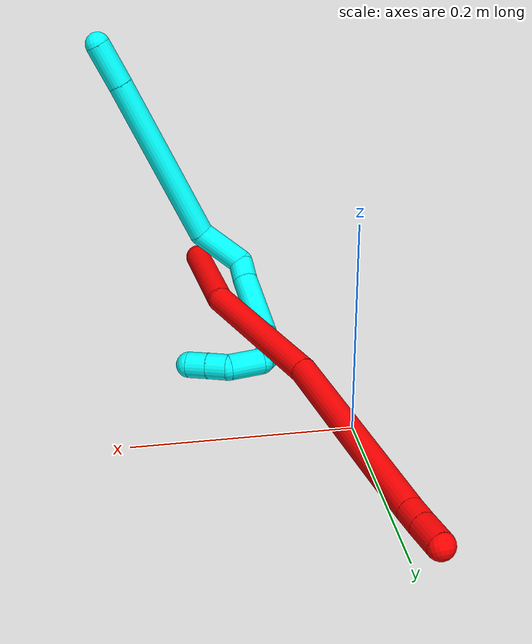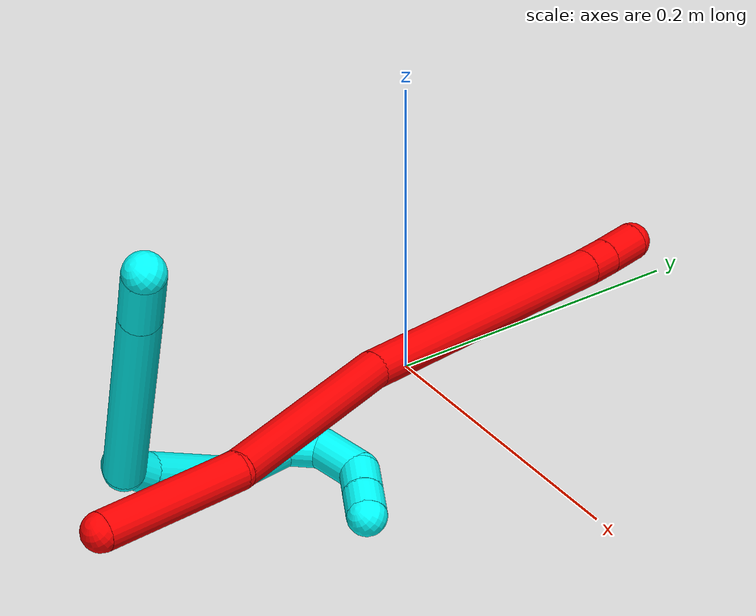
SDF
<sdf version="1.7">
 <world name="default">
  <model name="2">
   <static>0</static>
   <link name="2">
    <collision name="collision-cylinder-e_1_1_4">
     <pose>-0.002732 0.038955 -0.030456 -2.23435 -0.055198 0.113127</pose>
     <geometry><cylinder><radius>0.0125</radius><length>0.099046</length></cylinder></geometry>
     <surface>
      <friction><ode><mu>1.16</mu><mu2>1.16</mu2><slip1>0</slip1><slip2>0</slip2></ode></friction>
      <contact><ode><kp>1e+06</kp><kd>1</kd><max_vel>0</max_vel><min_depth>0.001</min_depth></ode></contact>
     </surface>
    </collision>
    <visual name="visual-cylinder-e_1_1_4">
     <pose>-0.002732 0.038955 -0.030456 -2.23435 -0.055198 0.113127</pose>
     <geometry><cylinder><radius>0.0125</radius><length>0.099046</length></cylinder></geometry>
     <material><ambient>1 0 0 1</ambient></material>
    </visual>
    <collision name="collision-cylinder-e_2_4_5">
     <pose>-0.031253 0.127071 -0.108557 -2.34055 -0.36025 0.812326</pose>
     <geometry><cylinder><radius>0.0125</radius><length>0.146314</length></cylinder></geometry>
     <surface>
      <friction><ode><mu>1.16</mu><mu2>1.16</mu2><slip1>0</slip1><slip2>0</slip2></ode></friction>
      <contact><ode><kp>1e+06</kp><kd>1</kd><max_vel>0</max_vel><min_depth>0.001</min_depth></ode></contact>
     </surface>
    </collision>
    <visual name="visual-cylinder-e_2_4_5">
     <pose>-0.031253 0.127071 -0.108557 -2.34055 -0.36025 0.812326</pose>
     <geometry><cylinder><radius>0.0125</radius><length>0.146314</length></cylinder></geometry>
     <material><ambient>1 0 0 1</ambient></material>
    </visual>
    <collision name="collision-cylinder-e_3_5_6">
     <pose>-0.0764 0.248715 -0.22676 -2.34273 -0.18909 0.441955</pose>
     <geometry><cylinder><radius>0.0125</radius><length>0.20598</length></cylinder></geometry>
     <surface>
      <friction><ode><mu>1.16</mu><mu2>1.16</mu2><slip1>0</slip1><slip2>0</slip2></ode></friction>
      <contact><ode><kp>1e+06</kp><kd>1</kd><max_vel>0</max_vel><min_depth>0.001</min_depth></ode></contact>
     </surface>
    </collision>
    <visual name="visual-cylinder-e_3_5_6">
     <pose>-0.0764 0.248715 -0.22676 -2.34273 -0.18909 0.441955</pose>
     <geometry><cylinder><radius>0.0125</radius><length>0.20598</length></cylinder></geometry>
     <material><ambient>1 0 0 1</ambient></material>
    </visual>
    <collision name="collision-cylinder-e_4_6_7">
     <pose>-0.097776 0.328893 -0.304026 -2.28776 -0.195121 0.423843</pose>
     <geometry><cylinder><radius>0.0125</radius><length>0.02081</length></cylinder></geometry>
     <surface>
      <friction><ode><mu>1.16</mu><mu2>1.16</mu2><slip1>0</slip1><slip2>0</slip2></ode></friction>
      <contact><ode><kp>1e+06</kp><kd>1</kd><max_vel>0</max_vel><min_depth>0.001</min_depth></ode></contact>
     </surface>
    </collision>
    <visual name="visual-cylinder-e_4_6_7">
     <pose>-0.097776 0.328893 -0.304026 -2.28776 -0.195121 0.423843</pose>
     <geometry><cylinder><radius>0.0125</radius><length>0.02081</length></cylinder></geometry>
     <material><ambient>1 0 0 1</ambient></material>
    </visual>
    <collision name="collision-cylinder-e_5_7_2">
     <pose>-0.102681 0.347061 -0.319443 -2.26449 -0.208902 0.439805</pose>
     <geometry><cylinder><radius>0.0125</radius><length>0.02785</length></cylinder></geometry>
     <surface>
      <friction><ode><mu>1.16</mu><mu2>1.16</mu2><slip1>0</slip1><slip2>0</slip2></ode></friction>
      <contact><ode><kp>1e+06</kp><kd>1</kd><max_vel>0</max_vel><min_depth>0.001</min_depth></ode></contact>
     </surface>
    </collision>
    <visual name="visual-cylinder-e_5_7_2">
     <pose>-0.102681 0.347061 -0.319443 -2.26449 -0.208902 0.439805</pose>
     <geometry><cylinder><radius>0.0125</radius><length>0.02785</length></cylinder></geometry>
     <material><ambient>1 0 0 1</ambient></material>
    </visual>
    <collision name="collision-sphere-2">
     <pose>-0.105569 0.357535 -0.328153 0 -0 0</pose>
     <geometry><sphere><radius>0.0125</radius></sphere></geometry>
     <surface>
      <friction><ode><mu>1.16</mu><mu2>1.16</mu2><slip1>0</slip1><slip2>0</slip2></ode></friction>
      <contact><ode><kp>1e+06</kp><kd>1</kd><max_vel>0</max_vel><min_depth>0.001</min_depth></ode></contact>
     </surface>
    </collision>
    <visual name="visual-sphere-2">
     <pose>-0.105569 0.357535 -0.328153 0 -0 0</pose>
     <geometry><sphere><radius>0.0125</radius></sphere></geometry>
     <material><ambient>1 0 0 1</ambient></material>
    </visual>
    <collision name="collision-sphere-7">
     <pose>-0.099793 0.336587 -0.310733 0 -0 0</pose>
     <geometry><sphere><radius>0.0125</radius></sphere></geometry>
     <surface>
      <friction><ode><mu>1.16</mu><mu2>1.16</mu2><slip1>0</slip1><slip2>0</slip2></ode></friction>
      <contact><ode><kp>1e+06</kp><kd>1</kd><max_vel>0</max_vel><min_depth>0.001</min_depth></ode></contact>
     </surface>
    </collision>
    <visual name="visual-sphere-7">
     <pose>-0.099793 0.336587 -0.310733 0 -0 0</pose>
     <geometry><sphere><radius>0.0125</radius></sphere></geometry>
     <material><ambient>1 0 0 1</ambient></material>
    </visual>
    <collision name="collision-sphere-6">
     <pose>-0.095758 0.321198 -0.297318 0 -0 0</pose>
     <geometry><sphere><radius>0.0125</radius></sphere></geometry>
     <surface>
      <friction><ode><mu>1.16</mu><mu2>1.16</mu2><slip1>0</slip1><slip2>0</slip2></ode></friction>
      <contact><ode><kp>1e+06</kp><kd>1</kd><max_vel>0</max_vel><min_depth>0.001</min_depth></ode></contact>
     </surface>
    </collision>
    <visual name="visual-sphere-6">
     <pose>-0.095758 0.321198 -0.297318 0 -0 0</pose>
     <geometry><sphere><radius>0.0125</radius></sphere></geometry>
     <material><ambient>1 0 0 1</ambient></material>
    </visual>
    <collision name="collision-sphere-5">
     <pose>-0.057041 0.176232 -0.156203 0 -0 0</pose>
     <geometry><sphere><radius>0.0125</radius></sphere></geometry>
     <surface>
      <friction><ode><mu>1.16</mu><mu2>1.16</mu2><slip1>0</slip1><slip2>0</slip2></ode></friction>
      <contact><ode><kp>1e+06</kp><kd>1</kd><max_vel>0</max_vel><min_depth>0.001</min_depth></ode></contact>
     </surface>
    </collision>
    <visual name="visual-sphere-5">
     <pose>-0.057041 0.176232 -0.156203 0 -0 0</pose>
     <geometry><sphere><radius>0.0125</radius></sphere></geometry>
     <material><ambient>1 0 0 1</ambient></material>
    </visual>
    <collision name="collision-sphere-1">
     <geometry><sphere><radius>0.0125</radius></sphere></geometry>
     <surface>
      <friction><ode><mu>1.16</mu><mu2>1.16</mu2><slip1>0</slip1><slip2>0</slip2></ode></friction>
      <contact><ode><kp>1e+06</kp><kd>1</kd><max_vel>0</max_vel><min_depth>0.001</min_depth></ode></contact>
     </surface>
    </collision>
    <visual name="visual-sphere-1">
     <geometry><sphere><radius>0.0125</radius></sphere></geometry>
     <material><ambient>1 0 0 1</ambient></material>
    </visual>
    <collision name="collision-sphere-4">
     <pose>-0.005464 0.077911 -0.060911 0 -0 0</pose>
     <geometry><sphere><radius>0.0125</radius></sphere></geometry>
     <surface>
      <friction><ode><mu>1.16</mu><mu2>1.16</mu2><slip1>0</slip1><slip2>0</slip2></ode></friction>
      <contact><ode><kp>1e+06</kp><kd>1</kd><max_vel>0</max_vel><min_depth>0.001</min_depth></ode></contact>
     </surface>
    </collision>
    <visual name="visual-sphere-4">
     <pose>-0.005464 0.077911 -0.060911 0 -0 0</pose>
     <geometry><sphere><radius>0.0125</radius></sphere></geometry>
     <material><ambient>1 0 0 1</ambient></material>
    </visual>
    <inertial>
     <pose>-0.050949 0.180382 -0.161663 0 -0 0</pose>
     <mass>0.5</mass>
     <inertia>
      <ixx>0.001407</ixx>
      <ixy>0</ixy>
      <ixz>0</ixz>
      <iyy>-2.4e-05</iyy>
      <iyz>0</iyz>
      <izz>-0.000555</izz>
     </inertia>
    </inertial>
   </link>
   <pose>0.102298 -0.282203 0.048633 0.641828 0.10795 0.034063</pose>
  </model>
  <model name="3">
   <static>0</static>
   <link name="3">
    <collision name="collision-cylinder-e_1_1_4">
     <pose>-0.00895 -0.011032 -0.017558 2.5806 -0.407468 -1.24427</pose>
     <geometry><cylinder><radius>0.0125</radius><length>0.045171</length></cylinder></geometry>
     <surface>
      <friction><ode><mu>1.16</mu><mu2>1.16</mu2><slip1>0</slip1><slip2>0</slip2></ode></friction>
      <contact><ode><kp>1e+06</kp><kd>1</kd><max_vel>0</max_vel><min_depth>0.001</min_depth></ode></contact>
     </surface>
    </collision>
    <visual name="visual-cylinder-e_1_1_4">
     <pose>-0.00895 -0.011032 -0.017558 2.5806 -0.407468 -1.24427</pose>
     <geometry><cylinder><radius>0.0125</radius><length>0.045171</length></cylinder></geometry>
     <material><ambient>0.003922 1 0.996078 1</ambient></material>
    </visual>
    <collision name="collision-cylinder-e_2_4_5">
     <pose>-0.051287 -0.066509 -0.102643 2.5595 -0.39165 -1.16982</pose>
     <geometry><cylinder><radius>0.0125</radius><length>0.174927</length></cylinder></geometry>
     <surface>
      <friction><ode><mu>1.16</mu><mu2>1.16</mu2><slip1>0</slip1><slip2>0</slip2></ode></friction>
      <contact><ode><kp>1e+06</kp><kd>1</kd><max_vel>0</max_vel><min_depth>0.001</min_depth></ode></contact>
     </surface>
    </collision>
    <visual name="visual-cylinder-e_2_4_5">
     <pose>-0.051287 -0.066509 -0.102643 2.5595 -0.39165 -1.16982</pose>
     <geometry><cylinder><radius>0.0125</radius><length>0.174927</length></cylinder></geometry>
     <material><ambient>0.003922 1 0.996078 1</ambient></material>
    </visual>
    <collision name="collision-cylinder-e_3_5_6">
     <pose>-0.102637 -0.113335 -0.187203 3.00263 -0.807204 -2.81849</pose>
     <geometry><cylinder><radius>0.0125</radius><length>0.04974</length></cylinder></geometry>
     <surface>
      <friction><ode><mu>1.16</mu><mu2>1.16</mu2><slip1>0</slip1><slip2>0</slip2></ode></friction>
      <contact><ode><kp>1e+06</kp><kd>1</kd><max_vel>0</max_vel><min_depth>0.001</min_depth></ode></contact>
     </surface>
    </collision>
    <visual name="visual-cylinder-e_3_5_6">
     <pose>-0.102637 -0.113335 -0.187203 3.00263 -0.807204 -2.81849</pose>
     <geometry><cylinder><radius>0.0125</radius><length>0.04974</length></cylinder></geometry>
     <material><ambient>0.003922 1 0.996078 1</ambient></material>
    </visual>
    <collision name="collision-cylinder-e_4_6_7">
     <pose>-0.121307 -0.114311 -0.214828 -3.00958 -0.065824 0.9242</pose>
     <geometry><cylinder><radius>0.0125</radius><length>0.021419</length></cylinder></geometry>
     <surface>
      <friction><ode><mu>1.16</mu><mu2>1.16</mu2><slip1>0</slip1><slip2>0</slip2></ode></friction>
      <contact><ode><kp>1e+06</kp><kd>1</kd><max_vel>0</max_vel><min_depth>0.001</min_depth></ode></contact>
     </surface>
    </collision>
    <visual name="visual-cylinder-e_4_6_7">
     <pose>-0.121307 -0.114311 -0.214828 -3.00958 -0.065824 0.9242</pose>
     <geometry><cylinder><radius>0.0125</radius><length>0.021419</length></cylinder></geometry>
     <material><ambient>0.003922 1 0.996078 1</ambient></material>
    </visual>
    <collision name="collision-cylinder-e_5_7_8">
     <pose>-0.126184 -0.102904 -0.258112 -2.84473 -0.121463 0.772434</pose>
     <geometry><cylinder><radius>0.0125</radius><length>0.068877</length></cylinder></geometry>
     <surface>
      <friction><ode><mu>1.16</mu><mu2>1.16</mu2><slip1>0</slip1><slip2>0</slip2></ode></friction>
      <contact><ode><kp>1e+06</kp><kd>1</kd><max_vel>0</max_vel><min_depth>0.001</min_depth></ode></contact>
     </surface>
    </collision>
    <visual name="visual-cylinder-e_5_7_8">
     <pose>-0.126184 -0.102904 -0.258112 -2.84473 -0.121463 0.772434</pose>
     <geometry><cylinder><radius>0.0125</radius><length>0.068877</length></cylinder></geometry>
     <material><ambient>0.003922 1 0.996078 1</ambient></material>
    </visual>
    <collision name="collision-cylinder-e_6_8_9">
     <pose>-0.129892 -0.074787 -0.303826 -2.19413 0.020815 -0.040596</pose>
     <geometry><cylinder><radius>0.0125</radius><length>0.044636</length></cylinder></geometry>
     <surface>
      <friction><ode><mu>1.16</mu><mu2>1.16</mu2><slip1>0</slip1><slip2>0</slip2></ode></friction>
      <contact><ode><kp>1e+06</kp><kd>1</kd><max_vel>0</max_vel><min_depth>0.001</min_depth></ode></contact>
     </surface>
    </collision>
    <visual name="visual-cylinder-e_6_8_9">
     <pose>-0.129892 -0.074787 -0.303826 -2.19413 0.020815 -0.040596</pose>
     <geometry><cylinder><radius>0.0125</radius><length>0.044636</length></cylinder></geometry>
     <material><ambient>0.003922 1 0.996078 1</ambient></material>
    </visual>
    <collision name="collision-cylinder-e_7_9_10">
     <pose>-0.122841 -0.050607 -0.322987 -2.36214 0.652185 -1.37759</pose>
     <geometry><cylinder><radius>0.0125</radius><length>0.021706</length></cylinder></geometry>
     <surface>
      <friction><ode><mu>1.16</mu><mu2>1.16</mu2><slip1>0</slip1><slip2>0</slip2></ode></friction>
      <contact><ode><kp>1e+06</kp><kd>1</kd><max_vel>0</max_vel><min_depth>0.001</min_depth></ode></contact>
     </surface>
    </collision>
    <visual name="visual-cylinder-e_7_9_10">
     <pose>-0.122841 -0.050607 -0.322987 -2.36214 0.652185 -1.37759</pose>
     <geometry><cylinder><radius>0.0125</radius><length>0.021706</length></cylinder></geometry>
     <material><ambient>0.003922 1 0.996078 1</ambient></material>
    </visual>
    <collision name="collision-cylinder-e_8_10_11">
     <pose>-0.100062 -0.042162 -0.330636 -2.13687 1.39819 -1.98402</pose>
     <geometry><cylinder><radius>0.0125</radius><length>0.032871</length></cylinder></geometry>
     <surface>
      <friction><ode><mu>1.16</mu><mu2>1.16</mu2><slip1>0</slip1><slip2>0</slip2></ode></friction>
      <contact><ode><kp>1e+06</kp><kd>1</kd><max_vel>0</max_vel><min_depth>0.001</min_depth></ode></contact>
     </surface>
    </collision>
    <visual name="visual-cylinder-e_8_10_11">
     <pose>-0.100062 -0.042162 -0.330636 -2.13687 1.39819 -1.98402</pose>
     <geometry><cylinder><radius>0.0125</radius><length>0.032871</length></cylinder></geometry>
     <material><ambient>0.003922 1 0.996078 1</ambient></material>
    </visual>
    <collision name="collision-cylinder-e_9_11_12">
     <pose>-0.07479 -0.043565 -0.329187 0.906731 1.08396 0.570711</pose>
     <geometry><cylinder><radius>0.0125</radius><length>0.02055</length></cylinder></geometry>
     <surface>
      <friction><ode><mu>1.16</mu><mu2>1.16</mu2><slip1>0</slip1><slip2>0</slip2></ode></friction>
      <contact><ode><kp>1e+06</kp><kd>1</kd><max_vel>0</max_vel><min_depth>0.001</min_depth></ode></contact>
     </surface>
    </collision>
    <visual name="visual-cylinder-e_9_11_12">
     <pose>-0.07479 -0.043565 -0.329187 0.906731 1.08396 0.570711</pose>
     <geometry><cylinder><radius>0.0125</radius><length>0.02055</length></cylinder></geometry>
     <material><ambient>0.003922 1 0.996078 1</ambient></material>
    </visual>
    <collision name="collision-cylinder-e_10_12_2">
     <pose>-0.056827 -0.051151 -0.323448 0.93993 1.08353 0.593328</pose>
     <geometry><cylinder><radius>0.0125</radius><length>0.020104</length></cylinder></geometry>
     <surface>
      <friction><ode><mu>1.16</mu><mu2>1.16</mu2><slip1>0</slip1><slip2>0</slip2></ode></friction>
      <contact><ode><kp>1e+06</kp><kd>1</kd><max_vel>0</max_vel><min_depth>0.001</min_depth></ode></contact>
     </surface>
    </collision>
    <visual name="visual-cylinder-e_10_12_2">
     <pose>-0.056827 -0.051151 -0.323448 0.93993 1.08353 0.593328</pose>
     <geometry><cylinder><radius>0.0125</radius><length>0.020104</length></cylinder></geometry>
     <material><ambient>0.003922 1 0.996078 1</ambient></material>
    </visual>
    <collision name="collision-sphere-2">
     <pose>-0.047945 -0.054952 -0.320672 0 -0 0</pose>
     <geometry><sphere><radius>0.0125</radius></sphere></geometry>
     <surface>
      <friction><ode><mu>1.16</mu><mu2>1.16</mu2><slip1>0</slip1><slip2>0</slip2></ode></friction>
      <contact><ode><kp>1e+06</kp><kd>1</kd><max_vel>0</max_vel><min_depth>0.001</min_depth></ode></contact>
     </surface>
    </collision>
    <visual name="visual-sphere-2">
     <pose>-0.047945 -0.054952 -0.320672 0 -0 0</pose>
     <geometry><sphere><radius>0.0125</radius></sphere></geometry>
     <material><ambient>0.003922 1 0.996078 1</ambient></material>
    </visual>
    <collision name="collision-sphere-12">
     <pose>-0.065709 -0.047351 -0.326224 0 -0 0</pose>
     <geometry><sphere><radius>0.0125</radius></sphere></geometry>
     <surface>
      <friction><ode><mu>1.16</mu><mu2>1.16</mu2><slip1>0</slip1><slip2>0</slip2></ode></friction>
      <contact><ode><kp>1e+06</kp><kd>1</kd><max_vel>0</max_vel><min_depth>0.001</min_depth></ode></contact>
     </surface>
    </collision>
    <visual name="visual-sphere-12">
     <pose>-0.065709 -0.047351 -0.326224 0 -0 0</pose>
     <geometry><sphere><radius>0.0125</radius></sphere></geometry>
     <material><ambient>0.003922 1 0.996078 1</ambient></material>
    </visual>
    <collision name="collision-sphere-11">
     <pose>-0.083871 -0.03978 -0.33215 0 -0 0</pose>
     <geometry><sphere><radius>0.0125</radius></sphere></geometry>
     <surface>
      <friction><ode><mu>1.16</mu><mu2>1.16</mu2><slip1>0</slip1><slip2>0</slip2></ode></friction>
      <contact><ode><kp>1e+06</kp><kd>1</kd><max_vel>0</max_vel><min_depth>0.001</min_depth></ode></contact>
     </surface>
    </collision>
    <visual name="visual-sphere-11">
     <pose>-0.083871 -0.03978 -0.33215 0 -0 0</pose>
     <geometry><sphere><radius>0.0125</radius></sphere></geometry>
     <material><ambient>0.003922 1 0.996078 1</ambient></material>
    </visual>
    <collision name="collision-sphere-10">
     <pose>-0.116254 -0.044545 -0.329122 0 -0 0</pose>
     <geometry><sphere><radius>0.0125</radius></sphere></geometry>
     <surface>
      <friction><ode><mu>1.16</mu><mu2>1.16</mu2><slip1>0</slip1><slip2>0</slip2></ode></friction>
      <contact><ode><kp>1e+06</kp><kd>1</kd><max_vel>0</max_vel><min_depth>0.001</min_depth></ode></contact>
     </surface>
    </collision>
    <visual name="visual-sphere-10">
     <pose>-0.116254 -0.044545 -0.329122 0 -0 0</pose>
     <geometry><sphere><radius>0.0125</radius></sphere></geometry>
     <material><ambient>0.003922 1 0.996078 1</ambient></material>
    </visual>
    <collision name="collision-sphere-9">
     <pose>-0.129428 -0.05667 -0.316851 0 -0 0</pose>
     <geometry><sphere><radius>0.0125</radius></sphere></geometry>
     <surface>
      <friction><ode><mu>1.16</mu><mu2>1.16</mu2><slip1>0</slip1><slip2>0</slip2></ode></friction>
      <contact><ode><kp>1e+06</kp><kd>1</kd><max_vel>0</max_vel><min_depth>0.001</min_depth></ode></contact>
     </surface>
    </collision>
    <visual name="visual-sphere-9">
     <pose>-0.129428 -0.05667 -0.316851 0 -0 0</pose>
     <geometry><sphere><radius>0.0125</radius></sphere></geometry>
     <material><ambient>0.003922 1 0.996078 1</ambient></material>
    </visual>
    <collision name="collision-sphere-4">
     <pose>-0.017901 -0.022064 -0.035116 0 -0 0</pose>
     <geometry><sphere><radius>0.0125</radius></sphere></geometry>
     <surface>
      <friction><ode><mu>1.16</mu><mu2>1.16</mu2><slip1>0</slip1><slip2>0</slip2></ode></friction>
      <contact><ode><kp>1e+06</kp><kd>1</kd><max_vel>0</max_vel><min_depth>0.001</min_depth></ode></contact>
     </surface>
    </collision>
    <visual name="visual-sphere-4">
     <pose>-0.017901 -0.022064 -0.035116 0 -0 0</pose>
     <geometry><sphere><radius>0.0125</radius></sphere></geometry>
     <material><ambient>0.003922 1 0.996078 1</ambient></material>
    </visual>
    <collision name="collision-sphere-1">
     <geometry><sphere><radius>0.0125</radius></sphere></geometry>
     <surface>
      <friction><ode><mu>1.16</mu><mu2>1.16</mu2><slip1>0</slip1><slip2>0</slip2></ode></friction>
      <contact><ode><kp>1e+06</kp><kd>1</kd><max_vel>0</max_vel><min_depth>0.001</min_depth></ode></contact>
     </surface>
    </collision>
    <visual name="visual-sphere-1">
     <geometry><sphere><radius>0.0125</radius></sphere></geometry>
     <material><ambient>0.003922 1 0.996078 1</ambient></material>
    </visual>
    <collision name="collision-sphere-8">
     <pose>-0.130357 -0.092904 -0.290801 0 -0 0</pose>
     <geometry><sphere><radius>0.0125</radius></sphere></geometry>
     <surface>
      <friction><ode><mu>1.16</mu><mu2>1.16</mu2><slip1>0</slip1><slip2>0</slip2></ode></friction>
      <contact><ode><kp>1e+06</kp><kd>1</kd><max_vel>0</max_vel><min_depth>0.001</min_depth></ode></contact>
     </surface>
    </collision>
    <visual name="visual-sphere-8">
     <pose>-0.130357 -0.092904 -0.290801 0 -0 0</pose>
     <geometry><sphere><radius>0.0125</radius></sphere></geometry>
     <material><ambient>0.003922 1 0.996078 1</ambient></material>
    </visual>
    <collision name="collision-sphere-5">
     <pose>-0.084672 -0.110953 -0.170171 0 -0 0</pose>
     <geometry><sphere><radius>0.0125</radius></sphere></geometry>
     <surface>
      <friction><ode><mu>1.16</mu><mu2>1.16</mu2><slip1>0</slip1><slip2>0</slip2></ode></friction>
      <contact><ode><kp>1e+06</kp><kd>1</kd><max_vel>0</max_vel><min_depth>0.001</min_depth></ode></contact>
     </surface>
    </collision>
    <visual name="visual-sphere-5">
     <pose>-0.084672 -0.110953 -0.170171 0 -0 0</pose>
     <geometry><sphere><radius>0.0125</radius></sphere></geometry>
     <material><ambient>0.003922 1 0.996078 1</ambient></material>
    </visual>
    <collision name="collision-sphere-6">
     <pose>-0.120602 -0.115717 -0.204235 0 -0 0</pose>
     <geometry><sphere><radius>0.0125</radius></sphere></geometry>
     <surface>
      <friction><ode><mu>1.16</mu><mu2>1.16</mu2><slip1>0</slip1><slip2>0</slip2></ode></friction>
      <contact><ode><kp>1e+06</kp><kd>1</kd><max_vel>0</max_vel><min_depth>0.001</min_depth></ode></contact>
     </surface>
    </collision>
    <visual name="visual-sphere-6">
     <pose>-0.120602 -0.115717 -0.204235 0 -0 0</pose>
     <geometry><sphere><radius>0.0125</radius></sphere></geometry>
     <material><ambient>0.003922 1 0.996078 1</ambient></material>
    </visual>
    <collision name="collision-sphere-7">
     <pose>-0.122011 -0.112904 -0.225422 0 -0 0</pose>
     <geometry><sphere><radius>0.0125</radius></sphere></geometry>
     <surface>
      <friction><ode><mu>1.16</mu><mu2>1.16</mu2><slip1>0</slip1><slip2>0</slip2></ode></friction>
      <contact><ode><kp>1e+06</kp><kd>1</kd><max_vel>0</max_vel><min_depth>0.001</min_depth></ode></contact>
     </surface>
    </collision>
    <visual name="visual-sphere-7">
     <pose>-0.122011 -0.112904 -0.225422 0 -0 0</pose>
     <geometry><sphere><radius>0.0125</radius></sphere></geometry>
     <material><ambient>0.003922 1 0.996078 1</ambient></material>
    </visual>
    <inertial>
     <pose>-0.080406 -0.070104 -0.190294 0 -0 0</pose>
     <mass>0.5</mass>
     <inertia>
      <ixx>-0.000189</ixx>
      <ixy>0</ixy>
      <ixz>0</ixz>
      <iyy>-0.000448</iyy>
      <iyz>0</iyz>
      <izz>0.000375</izz>
     </inertia>
    </inertial>
   </link>
   <pose>0.196393 -0.30097 0.278359 0.761999 0.055354 0.003887</pose>
  </model>
 </world>
</sdf>
